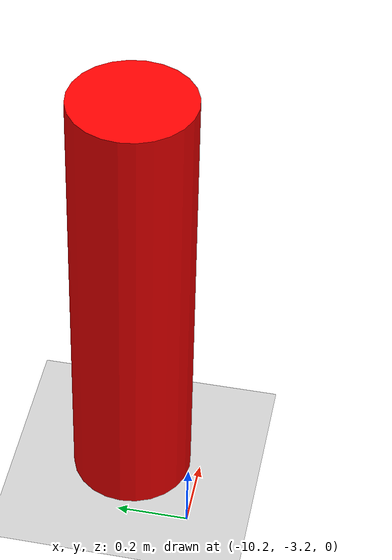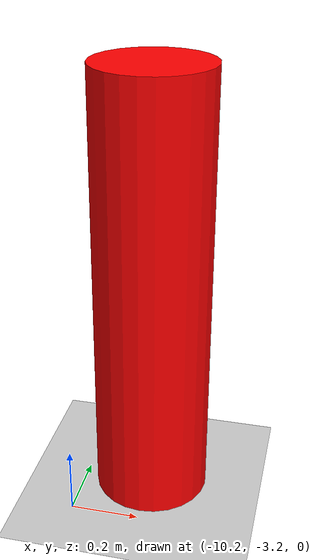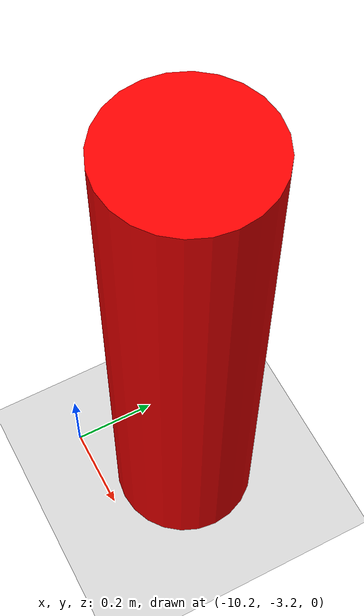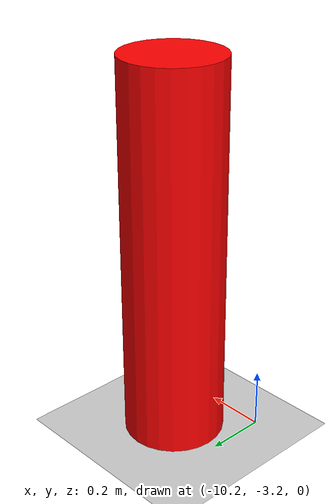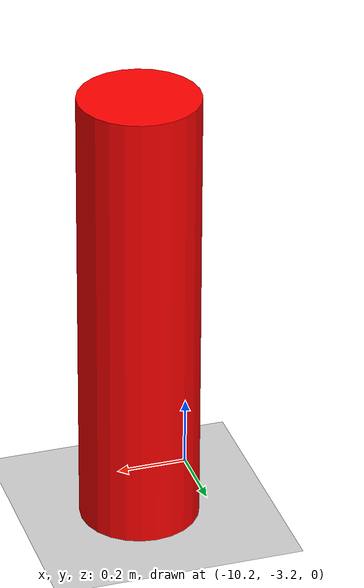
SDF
<sdf version='1.7'>
            <world name='default'>
                <light name='sun' type='directional'>
                <cast_shadows>1</cast_shadows>
                <pose>0 0 10 0 -0 0</pose>
                <diffuse>0.8 0.8 0.8 1</diffuse>
                <specular>0.2 0.2 0.2 1</specular>
                <attenuation>
                    <range>1000</range>
                    <constant>0.9</constant>
                    <linear>0.01</linear>
                    <quadratic>0.001</quadratic>
                </attenuation>
                <direction>-0.5 0.1 -0.9</direction>
                <spot>
                    <inner_angle>0</inner_angle>
                    <outer_angle>0</outer_angle>
                    <falloff>0</falloff>
                </spot>
                </light>

                <!-- Ground Plane地面 -->
                <model name='ground_plane'>
                  <static>true</static>
                  <link name='link'>
                    <collision name='collision'>
                      <geometry>
                        <plane>
                          <normal>0 0 1</normal>
                          <size>100 100</size>
                        </plane>
                      </geometry>
                      <surface>
                        <friction>
                          <ode>
                            <mu>100</mu>
                            <mu2>50</mu2>
                          </ode>
                        </friction>
                      </surface>
                    </collision>
                    <visual name='visual'>
                      <cast_shadows>0</cast_shadows>
                      <geometry>
                        <plane>
                          <normal>0 0 1</normal>
                          <size>100 100</size>
                        </plane>
                      </geometry>
                      <material>
                        <script>
                          <uri>file://media/materials/scripts/gazebo.material</uri>
                          <name>Gazebo/Grey</name>
                        </script>
                      </material>
                    </visual>
                  </link>
                </model>

                            <model name='dynamic_cylinder_1_0.3_0.3_1.3'>
                            <static>true</static>
                            <pose>-10 -3 0.65 0 0 0</pose> <!-- X, Y, Z, Roll, Pitch, Yaw -->
                            <link name='link'>
                                <visual name='visual'>
                                    <geometry>
                                        <cylinder>
                                            <radius>0.17</radius>
                                            <length>1.3</length>
                                        </cylinder>
                                    </geometry>
                                    <material>
                                        <ambient>1 0 0 1</ambient> <!-- Red color -->
                                        <diffuse>1 0 0 1</diffuse> <!-- Red color -->
                                        <specular>0.5 0.5 0.5 1</specular> <!-- Specular highlight -->
                                    </material>
                                </visual>
                            </link>
                            <plugin name="obstacle_motion" filename="libobstaclePathPlugin.so">
                                <orientation>false</orientation>
                                <loop>1</loop>
                                <velocity>0.4</velocity>
                                <path>
                                <waypoint>-10 -3 0</waypoint>
                                <waypoint>-0.5 2 0</waypoint>
                                </path>
                            </plugin>
                            </model>

            </world>
            </sdf>
